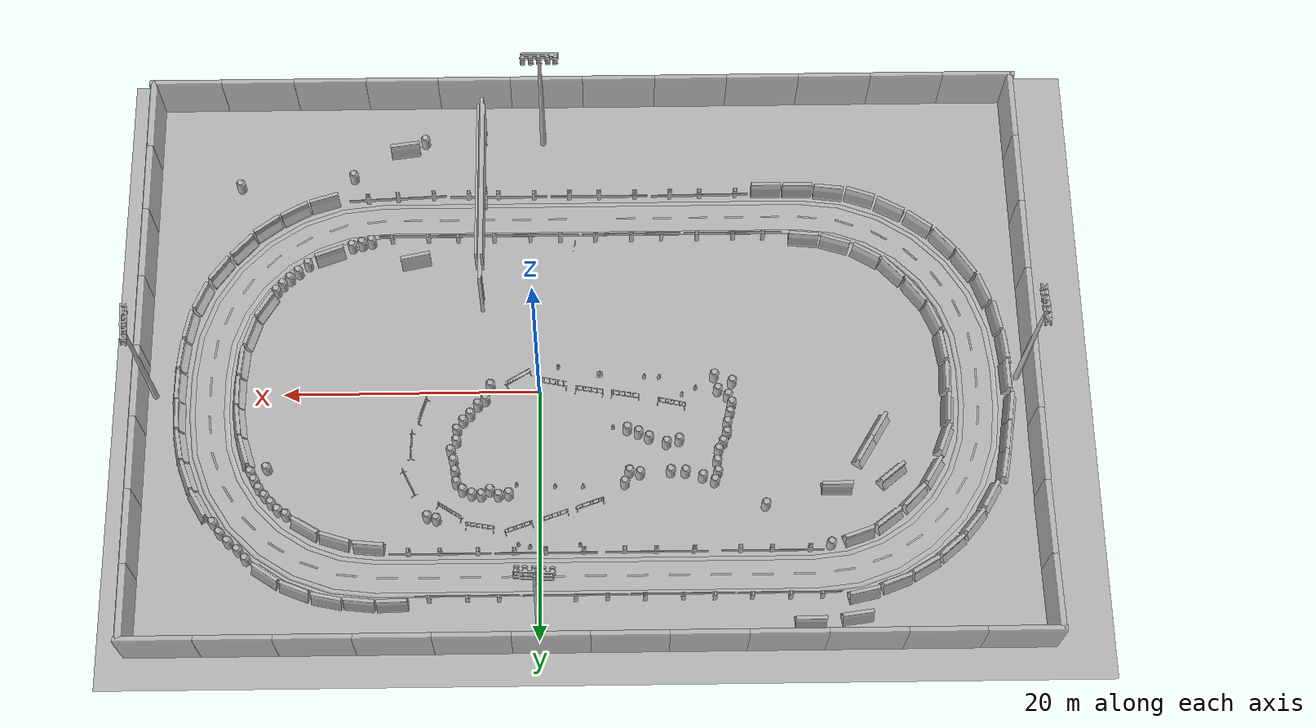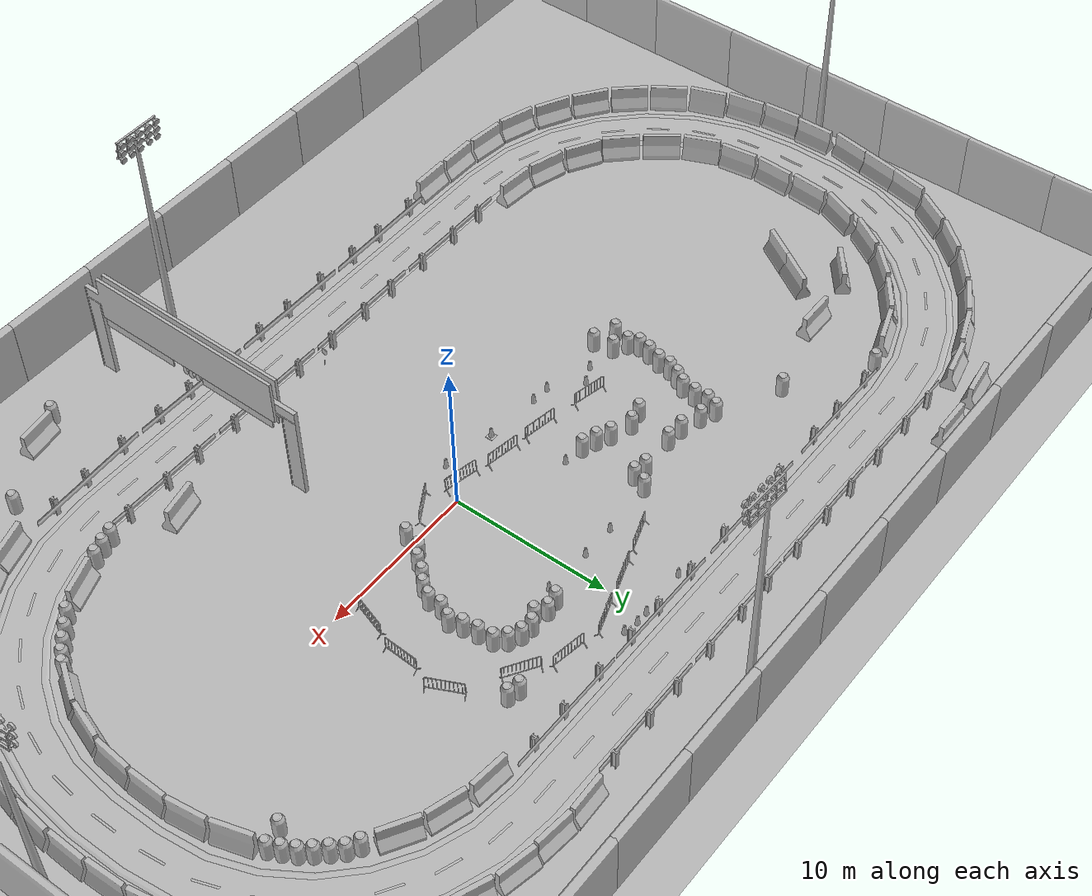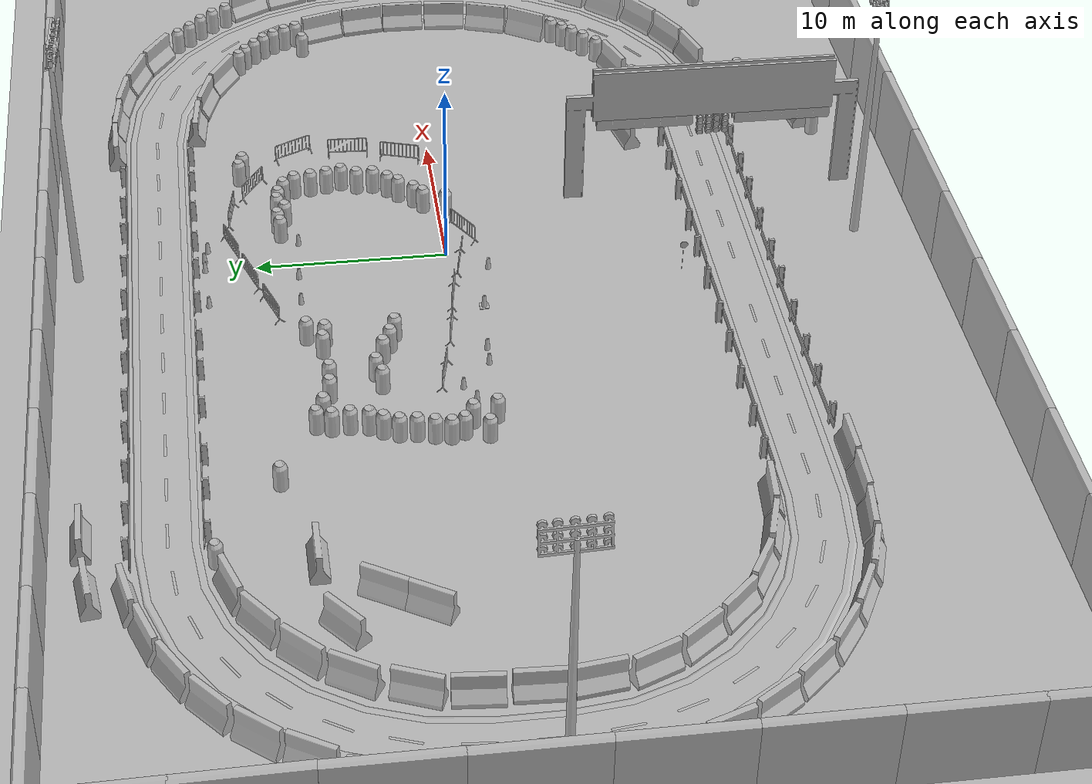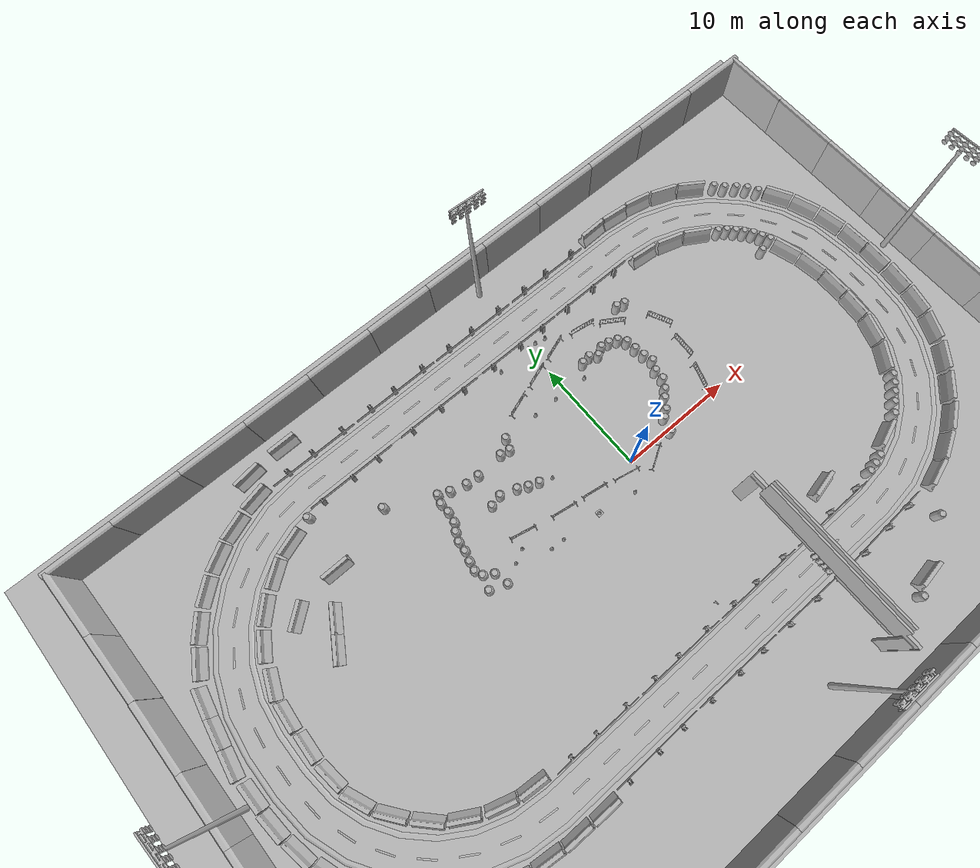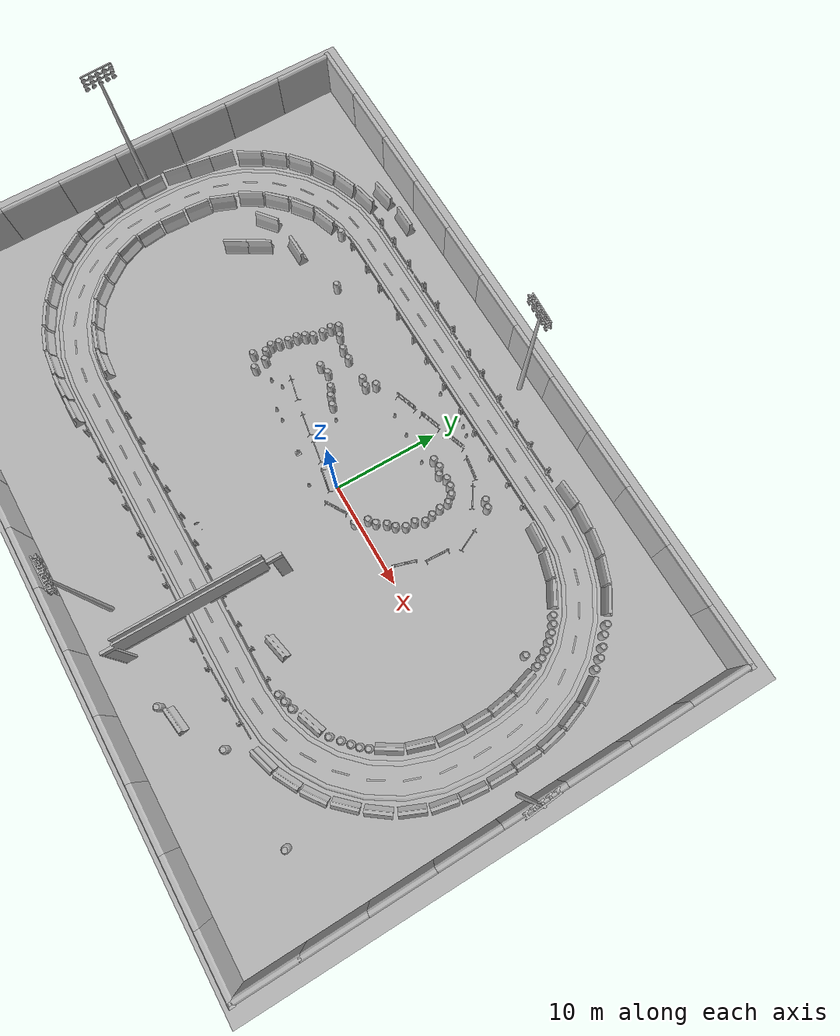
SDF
<sdf version="1.6">
 <world name="default">
  <gravity>0 0 -9.8</gravity>
  <magnetic_field>6e-06 2.3e-05 -4.2e-05</magnetic_field>
  <atmosphere type="adiabatic"/>
  <physics name="default_physics" default="0" type="ode">
   <max_step_size>0.001</max_step_size>
   <real_time_factor>1</real_time_factor>
   <real_time_update_rate>1000</real_time_update_rate>
  </physics>
  <scene><ambient>0.4 0.4 0.4 1</ambient><background>0.7 0.7 0.7 1</background><shadows>1</shadows></scene>
  <spherical_coordinates>
   <surface_model>EARTH_WGS84</surface_model>
   <latitude_deg>0</latitude_deg>
   <longitude_deg>0</longitude_deg>
   <elevation>0</elevation>
   <heading_deg>0</heading_deg>
  </spherical_coordinates>
  <model name="aws_robomaker_racetrack_Billboard_01">
   <include><uri>model://aws_robomaker_racetrack_Billboard_01</uri></include>
   <pose>4.32789 -14.8431 -2e-06 0 1e-06 1.56416</pose>
  </model>
  <model name="aws_robomaker_racetrack_CrashworthBucket_01_00">
   <include><uri>model://aws_robomaker_racetrack_CrashworthBucket_01</uri></include>
   <pose>-8.47522 4.09403 0.054 0 0 0</pose>
  </model>
  <model name="aws_robomaker_racetrack_CrashworthBucket_01_01">
   <include><uri>model://aws_robomaker_racetrack_CrashworthBucket_01</uri></include>
   <pose>-7.67012 3.67698 0.054 0 0 0</pose>
  </model>
  <model name="aws_robomaker_racetrack_CrashworthBucket_01_02">
   <include><uri>model://aws_robomaker_racetrack_CrashworthBucket_01</uri></include>
   <pose>-13.6708 -0.983538 0.054 0 0 0</pose>
  </model>
  <model name="aws_robomaker_racetrack_CrashworthBucket_01_03">
   <include><uri>model://aws_robomaker_racetrack_CrashworthBucket_01</uri></include>
   <pose>-13.6938 6.13266 0.054 0 0 0</pose>
  </model>
  <model name="aws_robomaker_racetrack_CrashworthBucket_01_04">
   <include><uri>model://aws_robomaker_racetrack_CrashworthBucket_01</uri></include>
   <pose>2.35672 8.58743 0.054 0 0 0.094608</pose>
  </model>
  <model name="aws_robomaker_racetrack_CrashworthBucket_01_05">
   <include><uri>model://aws_robomaker_racetrack_CrashworthBucket_01</uri></include>
   <pose>3.14399 8.69292 0 0 -0 0.292667</pose>
  </model>
  <model name="aws_robomaker_racetrack_CrashworthBucket_01_06">
   <include><uri>model://aws_robomaker_racetrack_CrashworthBucket_01</uri></include>
   <pose>5.18867 8.56895 0 0 0 -0.026658</pose>
  </model>
  <model name="aws_robomaker_racetrack_CrashworthBucket_01_07">
   <include><uri>model://aws_robomaker_racetrack_CrashworthBucket_01</uri></include>
   <pose>5.89383 8.24239 0.054 0 0 0</pose>
  </model>
  <model name="aws_robomaker_racetrack_CrashworthBucket_01_08">
   <include><uri>model://aws_robomaker_racetrack_CrashworthBucket_01</uri></include>
   <pose>8.58056 10.3426 0.054 0 0 0</pose>
  </model>
  <model name="aws_robomaker_racetrack_CrashworthBucket_01_09">
   <include><uri>model://aws_robomaker_racetrack_CrashworthBucket_01</uri></include>
   <pose>7.88227 10.5539 0.054 0 0 0</pose>
  </model>
  <model name="aws_robomaker_racetrack_CrashworthBucket_01_10">
   <include><uri>model://aws_robomaker_racetrack_CrashworthBucket_01</uri></include>
   <pose>22.2917 13.5697 0 0 -0 0</pose>
  </model>
  <model name="aws_robomaker_racetrack_CrashworthBucket_01_11">
   <include><uri>model://aws_robomaker_racetrack_CrashworthBucket_01</uri></include>
   <pose>22.9018 12.8693 0.054 0 0 0</pose>
  </model>
  <model name="aws_robomaker_racetrack_CrashworthBucket_01_12">
   <include><uri>model://aws_robomaker_racetrack_CrashworthBucket_01</uri></include>
   <pose>22.2128 6.62693 0.054 0 0 0</pose>
  </model>
  <model name="aws_robomaker_racetrack_CrashworthBucket_01_13">
   <include><uri>model://aws_robomaker_racetrack_CrashworthBucket_01</uri></include>
   <pose>20.9847 6.29253 0 0 -0 0</pose>
  </model>
  <model name="aws_robomaker_racetrack_CrashworthBucket_01_14">
   <include><uri>model://aws_robomaker_racetrack_CrashworthBucket_01</uri></include>
   <pose>24.073 -17.9303 0.054 0 0 0</pose>
  </model>
  <model name="aws_robomaker_racetrack_CrashworthBucket_01_15">
   <include><uri>model://aws_robomaker_racetrack_CrashworthBucket_01</uri></include>
   <pose>20.8422 -8.59507 0.054 0 0 0.012499</pose>
  </model>
  <model name="aws_robomaker_racetrack_CrashworthBucket_01_16">
   <include><uri>model://aws_robomaker_racetrack_CrashworthBucket_01</uri></include>
   <pose>20.3649 -9.17417 0 0 -0 0.004768</pose>
  </model>
  <model name="aws_robomaker_racetrack_CrashworthBucket_01_17">
   <include><uri>model://aws_robomaker_racetrack_CrashworthBucket_01</uri></include>
   <pose>19.7995 -9.67862 0.054 0 0 -0.003254</pose>
  </model>
  <model name="aws_robomaker_racetrack_CrashworthBucket_01_18">
   <include><uri>model://aws_robomaker_racetrack_CrashworthBucket_01</uri></include>
   <pose>19.1471 -10.2467 0.054 0 0 0</pose>
  </model>
  <model name="aws_robomaker_racetrack_CrashworthBucket_01_19">
   <include><uri>model://aws_robomaker_racetrack_CrashworthBucket_01</uri></include>
   <pose>18.3999 -10.9106 0.054 0 0 0</pose>
  </model>
  <model name="aws_robomaker_racetrack_CrashworthBucket_01_20">
   <include><uri>model://aws_robomaker_racetrack_CrashworthBucket_01</uri></include>
   <pose>-22.169 12.8311 0 0 -0 0</pose>
  </model>
  <model name="aws_robomaker_racetrack_CrashworthBucket_01_21">
   <include><uri>model://aws_robomaker_racetrack_CrashworthBucket_01</uri></include>
   <pose>-17.3216 9.66872 0.054 0 0 0</pose>
  </model>
  <model name="aws_robomaker_racetrack_CrashworthBucket_01_22">
   <include><uri>model://aws_robomaker_racetrack_CrashworthBucket_01</uri></include>
   <pose>14.1427 -12.6734 0.054 0 0 0</pose>
  </model>
  <model name="aws_robomaker_racetrack_CrashworthBucket_01_23">
   <include><uri>model://aws_robomaker_racetrack_CrashworthBucket_01</uri></include>
   <pose>14.9254 -12.4456 0.054 0 0 0</pose>
  </model>
  <model name="aws_robomaker_racetrack_CrashworthBucket_01_24">
   <include><uri>model://aws_robomaker_racetrack_CrashworthBucket_01</uri></include>
   <pose>-15.0558 -0.45872 0 0 -0 0</pose>
  </model>
  <model name="aws_robomaker_racetrack_CrashworthBucket_01_25">
   <include><uri>model://aws_robomaker_racetrack_CrashworthBucket_01</uri></include>
   <pose>13.3868 -12.8508 0.054 0 0 0</pose>
  </model>
  <model name="aws_robomaker_racetrack_CrashworthBucket_01_26">
   <include><uri>model://aws_robomaker_racetrack_CrashworthBucket_01</uri></include>
   <pose>9.22311 -21.8198 0.054 0 0 0</pose>
  </model>
  <model name="aws_robomaker_racetrack_CrashworthBucket_01_27">
   <include><uri>model://aws_robomaker_racetrack_CrashworthBucket_01</uri></include>
   <pose>3.82438 -0.358379 0 0 -0 0</pose>
  </model>
  <model name="aws_robomaker_racetrack_CrashworthBucket_01_28">
   <include><uri>model://aws_robomaker_racetrack_CrashworthBucket_01</uri></include>
   <pose>14.9648 -18.6736 0.054 0 0 0</pose>
  </model>
  <model name="aws_robomaker_racetrack_CrashworthBucket_01_29">
   <include><uri>model://aws_robomaker_racetrack_CrashworthBucket_01</uri></include>
   <pose>23.6827 12.1956 0.054 0 0 0</pose>
  </model>
  <model name="aws_robomaker_racetrack_CrashworthBucket_01_30">
   <include><uri>model://aws_robomaker_racetrack_CrashworthBucket_01</uri></include>
   <pose>24.3346 11.4874 0.054 0 0 0</pose>
  </model>
  <model name="aws_robomaker_racetrack_CrashworthBucket_01_31">
   <include><uri>model://aws_robomaker_racetrack_CrashworthBucket_01</uri></include>
   <pose>24.8882 10.6788 0.054 0 0 0</pose>
  </model>
  <model name="aws_robomaker_racetrack_CrashworthBucket_01_32">
   <include><uri>model://aws_robomaker_racetrack_CrashworthBucket_01</uri></include>
   <pose>20.5304 9.13561 0.054 0 0 -0.001449</pose>
  </model>
  <model name="aws_robomaker_racetrack_CrashworthBucket_01_33">
   <include><uri>model://aws_robomaker_racetrack_CrashworthBucket_01</uri></include>
   <pose>19.3714 10.0864 0.054 0 0 0</pose>
  </model>
  <model name="aws_robomaker_racetrack_CrashworthBucket_01_34">
   <include><uri>model://aws_robomaker_racetrack_CrashworthBucket_01</uri></include>
   <pose>20.0016 9.69426 0 0 0 -0.00182</pose>
  </model>
  <model name="aws_robomaker_racetrack_CrashworthBucket_01_35">
   <include><uri>model://aws_robomaker_racetrack_CrashworthBucket_01</uri></include>
   <pose>21.0478 8.57525 0.054 0 0 -0.000349</pose>
  </model>
  <model name="aws_robomaker_racetrack_CrashworthBucket_01_36">
   <include><uri>model://aws_robomaker_racetrack_CrashworthBucket_01</uri></include>
   <pose>21.5218 7.97169 0.054 0 0 0</pose>
  </model>
  <model name="aws_robomaker_racetrack_CrashworthBucket_01_37">
   <include><uri>model://aws_robomaker_racetrack_CrashworthBucket_01</uri></include>
   <pose>21.8874 7.29413 0.054 0 0 0</pose>
  </model>
  <model name="aws_robomaker_racetrack_CrashworthBucket_01_38">
   <include><uri>model://aws_robomaker_racetrack_CrashworthBucket_01</uri></include>
   <pose>6.38383 7.63289 0.054 0 0 0</pose>
  </model>
  <model name="aws_robomaker_racetrack_CrashworthBucket_01_39">
   <include><uri>model://aws_robomaker_racetrack_CrashworthBucket_01</uri></include>
   <pose>6.48514 6.73841 0.054 0 0 0</pose>
  </model>
  <model name="aws_robomaker_racetrack_CrashworthBucket_01_40">
   <include><uri>model://aws_robomaker_racetrack_CrashworthBucket_01</uri></include>
   <pose>6.63137 5.86016 0.054 0 0 0</pose>
  </model>
  <model name="aws_robomaker_racetrack_CrashworthBucket_01_41">
   <include><uri>model://aws_robomaker_racetrack_CrashworthBucket_01</uri></include>
   <pose>6.84089 5.04433 0.054 0 0 0</pose>
  </model>
  <model name="aws_robomaker_racetrack_CrashworthBucket_01_42">
   <include><uri>model://aws_robomaker_racetrack_CrashworthBucket_01</uri></include>
   <pose>6.41586 4.22597 0.054 0 0 0</pose>
  </model>
  <model name="aws_robomaker_racetrack_CrashworthBucket_01_43">
   <include><uri>model://aws_robomaker_racetrack_CrashworthBucket_01</uri></include>
   <pose>4.45229 8.66174 0.054 0 0 0.095583</pose>
  </model>
  <model name="aws_robomaker_racetrack_CrashworthBucket_01_44">
   <include><uri>model://aws_robomaker_racetrack_CrashworthBucket_01</uri></include>
   <pose>-13.8311 5.21601 0.054 0 0 0</pose>
  </model>
  <model name="aws_robomaker_racetrack_CrashworthBucket_01_45">
   <include><uri>model://aws_robomaker_racetrack_CrashworthBucket_01</uri></include>
   <pose>5.3642 2.03973 0.054 0 0 -0.008872</pose>
  </model>
  <model name="aws_robomaker_racetrack_CrashworthBucket_01_46">
   <include><uri>model://aws_robomaker_racetrack_CrashworthBucket_01</uri></include>
   <pose>5.91311 2.58362 0 0 0 -0.010849</pose>
  </model>
  <model name="aws_robomaker_racetrack_CrashworthBucket_01_47">
   <include><uri>model://aws_robomaker_racetrack_CrashworthBucket_01</uri></include>
   <pose>6.38729 3.3437 0.054 0 0 0</pose>
  </model>
  <model name="aws_robomaker_racetrack_CrashworthBucket_01_48">
   <include><uri>model://aws_robomaker_racetrack_CrashworthBucket_01</uri></include>
   <pose>4.78436 1.25544 0 0 0 -0.004687</pose>
  </model>
  <model name="aws_robomaker_racetrack_CrashworthBucket_01_49">
   <include><uri>model://aws_robomaker_racetrack_CrashworthBucket_01</uri></include>
   <pose>4.1948 0.806848 0.054 0 0 -0.002707</pose>
  </model>
  <model name="aws_robomaker_racetrack_CrashworthBucket_01_50">
   <include><uri>model://aws_robomaker_racetrack_CrashworthBucket_01</uri></include>
   <pose>-6.80733 3.36416 0.054 0 0 0</pose>
  </model>
  <model name="aws_robomaker_racetrack_CrashworthBucket_01_51">
   <include><uri>model://aws_robomaker_racetrack_CrashworthBucket_01</uri></include>
   <pose>-9.83411 4.55632 0.054 0 0 0</pose>
  </model>
  <model name="aws_robomaker_racetrack_CrashworthBucket_01_52">
   <include><uri>model://aws_robomaker_racetrack_CrashworthBucket_01</uri></include>
   <pose>-10.8194 4.31922 0.054 0 0 0</pose>
  </model>
  <model name="aws_robomaker_racetrack_CrashworthBucket_01_53">
   <include><uri>model://aws_robomaker_racetrack_CrashworthBucket_01</uri></include>
   <pose>3.7947 8.27498 0 0 0 -0.244875</pose>
  </model>
  <model name="aws_robomaker_racetrack_CrashworthBucket_01_54">
   <include><uri>model://aws_robomaker_racetrack_CrashworthBucket_01</uri></include>
   <pose>-10.1026 6.87186 0.054 0 0 0</pose>
  </model>
  <model name="aws_robomaker_racetrack_CrashworthBucket_01_55">
   <include><uri>model://aws_robomaker_racetrack_CrashworthBucket_01</uri></include>
   <pose>-11.2375 6.93335 0.054 0 0 0</pose>
  </model>
  <model name="aws_robomaker_racetrack_CrashworthBucket_01_56">
   <include><uri>model://aws_robomaker_racetrack_CrashworthBucket_01</uri></include>
   <pose>-13.9209 0.216601 0.054 0 0 0</pose>
  </model>
  <model name="aws_robomaker_racetrack_CrashworthBucket_01_57">
   <include><uri>model://aws_robomaker_racetrack_CrashworthBucket_01</uri></include>
   <pose>-7.72969 7.02543 0.054 0 0 0</pose>
  </model>
  <model name="aws_robomaker_racetrack_CrashworthBucket_01_58">
   <include><uri>model://aws_robomaker_racetrack_CrashworthBucket_01</uri></include>
   <pose>-6.91293 6.87432 0.054 0 0 0</pose>
  </model>
  <model name="aws_robomaker_racetrack_CrashworthBucket_01_59">
   <include><uri>model://aws_robomaker_racetrack_CrashworthBucket_01</uri></include>
   <pose>-6.56208 7.77782 0.054 0 0 0</pose>
  </model>
  <model name="aws_robomaker_racetrack_CrashworthBucket_01_60">
   <include><uri>model://aws_robomaker_racetrack_CrashworthBucket_01</uri></include>
   <pose>-14.6963 0.705029 0 0 -0 0.00632</pose>
  </model>
  <model name="aws_robomaker_racetrack_CrashworthBucket_01_61">
   <include><uri>model://aws_robomaker_racetrack_CrashworthBucket_01</uri></include>
   <pose>-14.205 4.57376 0.054 0 0 0</pose>
  </model>
  <model name="aws_robomaker_racetrack_CrashworthBucket_01_62">
   <include><uri>model://aws_robomaker_racetrack_CrashworthBucket_01</uri></include>
   <pose>-14.8093 2.14739 0.054 0 0 0</pose>
  </model>
  <model name="aws_robomaker_racetrack_CrashworthBucket_01_63">
   <include><uri>model://aws_robomaker_racetrack_CrashworthBucket_01</uri></include>
   <pose>-14.964 1.3691 0.054 0 0 0.003001</pose>
  </model>
  <model name="aws_robomaker_racetrack_CrashworthBucket_01_64">
   <include><uri>model://aws_robomaker_racetrack_CrashworthBucket_01</uri></include>
   <pose>-14.5066 3.82709 0.054 0 0 -0.127634</pose>
  </model>
  <model name="aws_robomaker_racetrack_CrashworthBucket_01_65">
   <include><uri>model://aws_robomaker_racetrack_CrashworthBucket_01</uri></include>
   <pose>-14.5756 2.99063 0.054 0 0 0</pose>
  </model>
  <model name="aws_robomaker_racetrack_CrashworthBucket_01_66">
   <include><uri>model://aws_robomaker_racetrack_CrashworthBucket_01</uri></include>
   <pose>-13.7254 7.00826 0.054 0 0 0</pose>
  </model>
  <model name="aws_robomaker_racetrack_CrashworthBucket_01_67">
   <include><uri>model://aws_robomaker_racetrack_CrashworthBucket_01</uri></include>
   <pose>-13.4797 7.73167 0.054 0 0 0</pose>
  </model>
  <model name="aws_robomaker_racetrack_CrashworthBucket_01_68">
   <include><uri>model://aws_robomaker_racetrack_CrashworthBucket_01</uri></include>
   <pose>-12.5612 7.3288 0.054 0 0 0</pose>
  </model>
  <model name="aws_robomaker_racetrack_FenceMesh_01_00">
   <include><uri>model://aws_robomaker_racetrack_FenceMesh_01</uri></include>
   <pose>4.2331 -11.1761 5.05223 0 0 -0.006038</pose>
  </model>
  <model name="aws_robomaker_racetrack_FenceMesh_01_01">
   <include><uri>model://aws_robomaker_racetrack_FenceMesh_01</uri></include>
   <pose>4.16406 -18.6269 5.05223 0 0 -0.006038</pose>
  </model>
  <model name="aws_robomaker_racetrack_FenceMesh_01_02">
   <include><uri>model://aws_robomaker_racetrack_FenceMesh_01</uri></include>
   <pose>4.63223 -18.6067 5.05223 0 0 -0.006038</pose>
  </model>
  <model name="aws_robomaker_racetrack_FenceMesh_01_03">
   <include><uri>model://aws_robomaker_racetrack_FenceMesh_01</uri></include>
   <pose>4.67467 -11.1966 5.05223 0 0 -0.006038</pose>
  </model>
  <model name="aws_robomaker_racetrack_Fence_01_00">
   <include><uri>model://aws_robomaker_racetrack_Fence_01</uri></include>
   <pose>7.552996 13.158695 0 0 0 -1.57272</pose>
  </model>
  <model name="aws_robomaker_racetrack_Fence_01_01">
   <include><uri>model://aws_robomaker_racetrack_Fence_01</uri></include>
   <pose>-0.500271 13.158695 0 0 0 -1.57272</pose>
  </model>
  <model name="aws_robomaker_racetrack_Fence_01_02">
   <include><uri>model://aws_robomaker_racetrack_Fence_01</uri></include>
   <pose>-8.897229 13.158695 0 0 0 -1.57272</pose>
  </model>
  <model name="aws_robomaker_racetrack_Fence_01_03">
   <include><uri>model://aws_robomaker_racetrack_Fence_01</uri></include>
   <pose>-17.681196 13.158695 0 0 0 -1.57272</pose>
  </model>
  <model name="aws_robomaker_racetrack_Fence_01_04">
   <include><uri>model://aws_robomaker_racetrack_Fence_01</uri></include>
   <pose>-12.990376 -16.857170 0.054 -0.0 0.0 -1.558614</pose>
  </model>
  <model name="aws_robomaker_racetrack_Fence_01_05">
   <include><uri>model://aws_robomaker_racetrack_Fence_01</uri></include>
   <pose>-4.880881 -16.849474 0.054  0 0 -1.572721</pose>
  </model>
  <model name="aws_robomaker_racetrack_Fence_01_06">
   <include><uri>model://aws_robomaker_racetrack_Fence_01</uri></include>
   <pose>3.247635 -16.899557 0.054  0 0 -1.581650</pose>
  </model>
  <model name="aws_robomaker_racetrack_Fence_01_07">
   <include><uri>model://aws_robomaker_racetrack_Fence_01</uri></include>
   <pose>11.364270 -16.813890 0.054  0.0 0.0 -1.525504</pose>
  </model>
  <model name="aws_robomaker_racetrack_Fence_01_08">
   <include><uri>model://aws_robomaker_racetrack_Fence_01</uri></include>
   <pose>-15.529042 -13.134610 0.054 0 -0 1.57158</pose>
  </model>
  <model name="aws_robomaker_racetrack_Fence_01_09">
   <include><uri>model://aws_robomaker_racetrack_Fence_01</uri></include>
   <pose>-7.391050 -13.134610 0.054651 0 0.0 1.580400</pose>
  </model>
  <model name="aws_robomaker_racetrack_Fence_01_10">
   <include><uri>model://aws_robomaker_racetrack_Fence_01</uri></include>
   <pose>0.720398 -13.134610 0.054671 0 -0 1.57158</pose>
  </model>
  <model name="aws_robomaker_racetrack_Fence_01_11">
   <include><uri>model://aws_robomaker_racetrack_Fence_01</uri></include>
   <pose>8.89898 -13.134610 0.054638 0.0 0.0 1.572679</pose>
  </model>
  <model name="aws_robomaker_racetrack_Fence_01_12">
   <include><uri>model://aws_robomaker_racetrack_Fence_01</uri></include>
   <pose>-18.882746 16.818918 0.054  0 -0 1.57158</pose>
  </model>
  <model name="aws_robomaker_racetrack_Fence_01_13">
   <include><uri>model://aws_robomaker_racetrack_Fence_01</uri></include>
   <pose>-10.776134 16.818918 0.054  0 -0 1.57158</pose>
  </model>
  <model name="aws_robomaker_racetrack_Fence_01_14">
   <include><uri>model://aws_robomaker_racetrack_Fence_01</uri></include>
   <pose>-2.679413 16.818918 0 0 -0 1.57158</pose>
  </model>
  <model name="aws_robomaker_racetrack_Fence_01_15">
   <include><uri>model://aws_robomaker_racetrack_Fence_01</uri></include>
   <pose>5.475008 16.818918 0.054  0 -0 1.57158</pose>
  </model>
  <model name="aws_robomaker_racetrack_Fence_02_00">
   <include><uri>model://aws_robomaker_racetrack_Fence_02</uri></include>
   <pose>-1.05264 -0.5238 0.040535 -0.008781 0.086261 -1.77545</pose>
  </model>
  <model name="aws_robomaker_racetrack_Fence_02_01">
   <include><uri>model://aws_robomaker_racetrack_Fence_02</uri></include>
   <pose>9.06357 1.626 0 0 0 -0.300407</pose>
  </model>
  <model name="aws_robomaker_racetrack_Fence_02_02">
   <include><uri>model://aws_robomaker_racetrack_Fence_02</uri></include>
   <pose>-3.88076 0.08215 0 0 0 -1.73608</pose>
  </model>
  <model name="aws_robomaker_racetrack_Fence_02_03">
   <include><uri>model://aws_robomaker_racetrack_Fence_02</uri></include>
   <pose>-6.69129 0.495608 0 0 0 -1.73608</pose>
  </model>
  <model name="aws_robomaker_racetrack_Fence_02_04">
   <include><uri>model://aws_robomaker_racetrack_Fence_02</uri></include>
   <pose>-10.283561 1.223148 0.054 0 0 -1.789875</pose>
  </model>
  <model name="aws_robomaker_racetrack_Fence_02_05">
   <include><uri>model://aws_robomaker_racetrack_Fence_02</uri></include>
   <pose>4.57205 11.1353 0 0 0 -1.73608</pose>
  </model>
  <model name="aws_robomaker_racetrack_Fence_02_06">
   <include><uri>model://aws_robomaker_racetrack_Fence_02</uri></include>
   <pose>6.8958583 9.887979 0 0 0 -2.140475</pose>
  </model>
  <model name="aws_robomaker_racetrack_Fence_02_07">
   <include><uri>model://aws_robomaker_racetrack_Fence_02</uri></include>
   <pose>1.60246 11.2143 0 0 -0 1.90339</pose>
  </model>
  <model name="aws_robomaker_racetrack_Fence_02_08">
   <include><uri>model://aws_robomaker_racetrack_Fence_02</uri></include>
   <pose>-1.13 10.3272 0 0 -0 1.90339</pose>
  </model>
  <model name="aws_robomaker_racetrack_Fence_02_09">
   <include><uri>model://aws_robomaker_racetrack_Fence_02</uri></include>
   <pose>-3.85384 9.39461 0 0 -0 1.90339</pose>
  </model>
  <model name="aws_robomaker_racetrack_Fence_02_10">
   <include><uri>model://aws_robomaker_racetrack_Fence_02</uri></include>
   <pose>9.89165 4.45225 0 0 0 -0.045392</pose>
  </model>
  <model name="aws_robomaker_racetrack_Fence_02_11">
   <include><uri>model://aws_robomaker_racetrack_Fence_02</uri></include>
   <pose>10.0686 7.48939 0 0 -0 0.450699</pose>
  </model>
  <model name="aws_robomaker_racetrack_Fence_02_12">
   <include><uri>model://aws_robomaker_racetrack_Fence_02</uri></include>
   <pose>1.65856 -1.03383 0 0 0 -1.02955</pose>
  </model>
  <model name="aws_robomaker_racetrack_RaceStartLight_01_00">
   <include><uri>model://aws_robomaker_racetrack_RaceStartLight_01</uri></include>
   <pose>4.13359 -14.1692 5.08709 0 -0 0</pose>
  </model>
  <model name="aws_robomaker_racetrack_RaceStartLight_01_01">
   <include><uri>model://aws_robomaker_racetrack_RaceStartLight_01</uri></include>
   <pose>4.14665 -14.6522 5.08709 0 -0 0</pose>
  </model>
  <model name="aws_robomaker_racetrack_RaceStartLight_01_02">
   <include><uri>model://aws_robomaker_racetrack_RaceStartLight_01</uri></include>
   <pose>4.21676 -15.0918 5.08709 0 -0 0</pose>
  </model>
  <model name="aws_robomaker_racetrack_RaceStartLight_01_03">
   <include><uri>model://aws_robomaker_racetrack_RaceStartLight_01</uri></include>
   <pose>4.17594 -15.5526 5.08709 0 -0 0</pose>
  </model>
  <model name="aws_robomaker_racetrack_StonePier_01_00">
   <include><uri>model://aws_robomaker_racetrack_StonePier_01</uri></include>
   <pose>-21.1732 -12.7799 0.054 0 -0 -0.086667</pose>
  </model>
  <model name="aws_robomaker_racetrack_StonePier_01_01">
   <include><uri>model://aws_robomaker_racetrack_StonePier_01</uri></include>
   <pose>-23.6727 -12.2854 0.054 0 -0.0 -0.301631</pose>
  </model>
  <model name="aws_robomaker_racetrack_StonePier_01_02">
   <include><uri>model://aws_robomaker_racetrack_StonePier_01</uri></include>
   <pose>-22.8128 8.293 0.054 0 -0 0.009742</pose>
  </model>
  <model name="aws_robomaker_racetrack_StonePier_01_03">
   <include><uri>model://aws_robomaker_racetrack_StonePier_01</uri></include>
   <pose>-24.2891 12.2118 0.054 0 -0 0.334226</pose>
  </model>
  <model name="aws_robomaker_racetrack_StonePier_01_04">
   <include><uri>model://aws_robomaker_racetrack_StonePier_01</uri></include>
   <pose>-20.3219 18.8912 0.054 0 -0.0 0.009742</pose>
  </model>
  <model name="aws_robomaker_racetrack_StonePier_01_05">
   <include><uri>model://aws_robomaker_racetrack_StonePier_01</uri></include>
   <pose>11.0892 17.2043 0.054 0 -0.0 0.029389</pose>
  </model>
  <model name="aws_robomaker_racetrack_StonePier_01_06">
   <include><uri>model://aws_robomaker_racetrack_StonePier_01</uri></include>
   <pose>13.5633 17.1121 0.054 0 -0.0 -0.108086</pose>
  </model>
  <model name="aws_robomaker_racetrack_StonePier_01_07">
   <include><uri>model://aws_robomaker_racetrack_StonePier_01</uri></include>
   <pose>16.0013 16.8104 0.054 0 -0.0 -0.206147</pose>
  </model>
  <model name="aws_robomaker_racetrack_StonePier_01_08">
   <include><uri>model://aws_robomaker_racetrack_StonePier_01</uri></include>
   <pose>18.4263 16.0384 0.054 0 -0.0 -0.379591</pose>
  </model>
  <model name="aws_robomaker_racetrack_StonePier_01_09">
   <include><uri>model://aws_robomaker_racetrack_StonePier_01</uri></include>
   <pose>17.8323 11.1467 0.054 0 -0.0 -0.536699</pose>
  </model>
  <model name="aws_robomaker_racetrack_StonePier_01_10">
   <include><uri>model://aws_robomaker_racetrack_StonePier_01</uri></include>
   <pose>22.7563 5.03589 0.054 0 -0.0 -1.28348</pose>
  </model>
  <model name="aws_robomaker_racetrack_StonePier_01_11">
   <include><uri>model://aws_robomaker_racetrack_StonePier_01</uri></include>
   <pose>23.2964 2.57509 0.054 -0 -0.0 -1.43498</pose>
  </model>
  <model name="aws_robomaker_racetrack_StonePier_01_12">
   <include><uri>model://aws_robomaker_racetrack_StonePier_01</uri></include>
   <pose>23.4326 0.10745 0.054 -0 -0.0 -1.58404</pose>
  </model>
  <model name="aws_robomaker_racetrack_StonePier_01_13">
   <include><uri>model://aws_robomaker_racetrack_StonePier_01</uri></include>
   <pose>23.2774 -2.40527 0.054 0 -0.0 -1.65922</pose>
  </model>
  <model name="aws_robomaker_racetrack_StonePier_01_14">
   <include><uri>model://aws_robomaker_racetrack_StonePier_01</uri></include>
   <pose>22.705 -4.89186 0.054 -0 -0.0 -1.88566</pose>
  </model>
  <model name="aws_robomaker_racetrack_StonePier_01_15">
   <include><uri>model://aws_robomaker_racetrack_StonePier_01</uri></include>
   <pose>21.6688 -7.19526 0.054 0 -0.0 -2.13625</pose>
  </model>
  <model name="aws_robomaker_racetrack_StonePier_01_16">
   <include><uri>model://aws_robomaker_racetrack_StonePier_01</uri></include>
   <pose>28.1211 -0.475719 0.054 0 -0.0 -1.59506</pose>
  </model>
  <model name="aws_robomaker_racetrack_StonePier_01_17">
   <include><uri>model://aws_robomaker_racetrack_StonePier_01</uri></include>
   <pose>16.7061 -11.7058 0.054 -0 -0.0 -2.7953</pose>
  </model>
  <model name="aws_robomaker_racetrack_StonePier_01_18">
   <include><uri>model://aws_robomaker_racetrack_StonePier_01</uri></include>
   <pose>28.0027 -3.03906 0.054 0 -0.0 -1.68291</pose>
  </model>
  <model name="aws_robomaker_racetrack_StonePier_01_19">
   <include><uri>model://aws_robomaker_racetrack_StonePier_01</uri></include>
   <pose>9.84486 -11.2119 0.054 0 -0.0 -2.93657</pose>
  </model>
  <model name="aws_robomaker_racetrack_StonePier_01_20">
   <include><uri>model://aws_robomaker_racetrack_StonePier_01</uri></include>
   <pose>10.8625 -21.1556 0.054 -0 -0.0 0.135159</pose>
  </model>
  <model name="aws_robomaker_racetrack_StonePier_01_21">
   <include><uri>model://aws_robomaker_racetrack_StonePier_01</uri></include>
   <pose>17.2914 -16.4156 0.054 0 -0.0 0.298911</pose>
  </model>
  <model name="aws_robomaker_racetrack_StonePier_01_22">
   <include><uri>model://aws_robomaker_racetrack_StonePier_01</uri></include>
   <pose>19.6208 -15.4615 0.054 0 -0.0 0.489077</pose>
  </model>
  <model name="aws_robomaker_racetrack_StonePier_01_23">
   <include><uri>model://aws_robomaker_racetrack_StonePier_01</uri></include>
   <pose>21.7939 -14.1476 0.054 0 -0.0 0.61668</pose>
  </model>
  <model name="aws_robomaker_racetrack_StonePier_01_24">
   <include><uri>model://aws_robomaker_racetrack_StonePier_01</uri></include>
   <pose>23.6698 -12.3608 0.054 0 -0.0 0.810318</pose>
  </model>
  <model name="aws_robomaker_racetrack_StonePier_01_25">
   <include><uri>model://aws_robomaker_racetrack_StonePier_01</uri></include>
   <pose>25.3929 -10.3347 0.054 -0 -0.0 0.931507</pose>
  </model>
  <model name="aws_robomaker_racetrack_StonePier_01_26">
   <include><uri>model://aws_robomaker_racetrack_StonePier_01</uri></include>
   <pose>27.7466 4.53211 0.054 0 -0.0 1.75246</pose>
  </model>
  <model name="aws_robomaker_racetrack_StonePier_01_27">
   <include><uri>model://aws_robomaker_racetrack_StonePier_01</uri></include>
   <pose>27.0691 6.99271 0.054 0 -0.0 1.91654</pose>
  </model>
  <model name="aws_robomaker_racetrack_StonePier_01_28">
   <include><uri>model://aws_robomaker_racetrack_StonePier_01</uri></include>
   <pose>26.0366 9.29805 0.054 0 -0.0 2.08782</pose>
  </model>
  <model name="aws_robomaker_racetrack_StonePier_01_29">
   <include><uri>model://aws_robomaker_racetrack_StonePier_01</uri></include>
   <pose>26.7385 -7.99231 0.054 -0 -0.0 1.16098</pose>
  </model>
  <model name="aws_robomaker_racetrack_StonePier_01_30">
   <include><uri>model://aws_robomaker_racetrack_StonePier_01</uri></include>
   <pose>27.5962 -5.54706 0.054 0 -0.0 1.36231</pose>
  </model>
  <model name="aws_robomaker_racetrack_StonePier_01_31">
   <include><uri>model://aws_robomaker_racetrack_StonePier_01</uri></include>
   <pose>28.0314 1.9989 0.054 0 -0.0 -1.53351</pose>
  </model>
  <model name="aws_robomaker_racetrack_StonePier_01_32">
   <include><uri>model://aws_robomaker_racetrack_StonePier_01</uri></include>
   <pose>20.6714 14.8473 0.054 0 -0.0 -0.587598</pose>
  </model>
  <model name="aws_robomaker_racetrack_StonePier_01_33">
   <include><uri>model://aws_robomaker_racetrack_StonePier_01</uri></include>
   <pose>12.9654 12.6879 0.054 0 -0.0 -0.096781</pose>
  </model>
  <model name="aws_robomaker_racetrack_StonePier_01_34">
   <include><uri>model://aws_robomaker_racetrack_StonePier_01</uri></include>
   <pose>15.5357 12.1477 0.054 -0 0.00036 -0.29956</pose>
  </model>
  <model name="aws_robomaker_racetrack_StonePier_01_35">
   <include><uri>model://aws_robomaker_racetrack_StonePier_01</uri></include>
   <pose>-23.832 18.561 0.054 -0 -0.0 0.133251</pose>
  </model>
  <model name="aws_robomaker_racetrack_StonePier_01_36">
   <include><uri>model://aws_robomaker_racetrack_StonePier_01</uri></include>
   <pose>-26.5946 11.0295 0.054 0 0.00036 0.646791</pose>
  </model>
  <model name="aws_robomaker_racetrack_StonePier_01_37">
   <include><uri>model://aws_robomaker_racetrack_StonePier_01</uri></include>
   <pose>-24.4271 16.8105 0.054 -0 -0.0 0.217772</pose>
  </model>
  <model name="aws_robomaker_racetrack_StonePier_01_38">
   <include><uri>model://aws_robomaker_racetrack_StonePier_01</uri></include>
   <pose>-28.6752 9.30494 0.054 0 -0.0 0.789682</pose>
  </model>
  <model name="aws_robomaker_racetrack_StonePier_01_39">
   <include><uri>model://aws_robomaker_racetrack_StonePier_01</uri></include>
   <pose>-30.2584 7.24451 0.054 -0 -0.0 1.02306</pose>
  </model>
  <model name="aws_robomaker_racetrack_StonePier_01_40">
   <include><uri>model://aws_robomaker_racetrack_StonePier_01</uri></include>
   <pose>-18.3212 -17.1986 0.054 0 -0.0 -0.000165</pose>
  </model>
  <model name="aws_robomaker_racetrack_StonePier_01_41">
   <include><uri>model://aws_robomaker_racetrack_StonePier_01</uri></include>
   <pose>-26.1157 -11.2238 0.054 0 -0.0 -0.528829</pose>
  </model>
  <model name="aws_robomaker_racetrack_StonePier_01_42">
   <include><uri>model://aws_robomaker_racetrack_StonePier_01</uri></include>
   <pose>-28.1466 -9.75745 0.054 0 -0.0 -0.811127</pose>
  </model>
  <model name="aws_robomaker_racetrack_StonePier_01_43">
   <include><uri>model://aws_robomaker_racetrack_StonePier_01</uri></include>
   <pose>-29.8572 -7.79098 0.054 0 -0.0 -0.924577</pose>
  </model>
  <model name="aws_robomaker_racetrack_StonePier_01_44">
   <include><uri>model://aws_robomaker_racetrack_StonePier_01</uri></include>
   <pose>-31.1336 -5.56451 0.054 0 -0.0 -1.16956</pose>
  </model>
  <model name="aws_robomaker_racetrack_StonePier_01_45">
   <include><uri>model://aws_robomaker_racetrack_StonePier_01</uri></include>
   <pose>-31.6395 -3.07904 0.054 -0 -0.0 -1.43795</pose>
  </model>
  <model name="aws_robomaker_racetrack_StonePier_01_46">
   <include><uri>model://aws_robomaker_racetrack_StonePier_01</uri></include>
   <pose>-31.7709 -0.48849 0.054 0 -0.0 -1.61074</pose>
  </model>
  <model name="aws_robomaker_racetrack_StonePier_01_47">
   <include><uri>model://aws_robomaker_racetrack_StonePier_01</uri></include>
   <pose>-31.7363 2.12666 0.054 0 -0.0 -1.64853</pose>
  </model>
  <model name="aws_robomaker_racetrack_StonePier_01_48">
   <include><uri>model://aws_robomaker_racetrack_StonePier_01</uri></include>
   <pose>-31.2901 4.63965 0.054 -0 -0.0 -1.9545</pose>
  </model>
  <model name="aws_robomaker_racetrack_StonePier_01_49">
   <include><uri>model://aws_robomaker_racetrack_StonePier_01</uri></include>
   <pose>-25.0833 5.46077 -2.5e-05 2e-06 -2e-05 -2.1191</pose>
  </model>
  <model name="aws_robomaker_racetrack_StonePier_01_50">
   <include><uri>model://aws_robomaker_racetrack_StonePier_01</uri></include>
   <pose>-26.2415 3.56444 -3.6e-05 1e-06 -2.8e-05 -2.1191</pose>
  </model>
  <model name="aws_robomaker_racetrack_StonePier_01_51">
   <include><uri>model://aws_robomaker_racetrack_StonePier_01</uri></include>
   <pose>-27.0954 7.40849 0.054 -0 0.00036 -2.46174</pose>
  </model>
  <model name="aws_robomaker_racetrack_StonePier_01_52">
   <include><uri>model://aws_robomaker_racetrack_StonePier_01</uri></include>
   <pose>-28.2666 -15.3279 0.054 0 0.00036 -0.483595</pose>
  </model>
  <model name="aws_robomaker_racetrack_StonePier_01_53">
   <include><uri>model://aws_robomaker_racetrack_StonePier_01</uri></include>
   <pose>-30.4813 -13.931 0.054 0 -0.0 2.50624</pose>
  </model>
  <model name="aws_robomaker_racetrack_StonePier_01_54">
   <include><uri>model://aws_robomaker_racetrack_StonePier_01</uri></include>
   <pose>-32.3931 -12.181 0.054 0 -0.0 2.30053</pose>
  </model>
  <model name="aws_robomaker_racetrack_StonePier_01_55">
   <include><uri>model://aws_robomaker_racetrack_StonePier_01</uri></include>
   <pose>-33.9725 -10.1825 0.054 0 -0.0 2.15404</pose>
  </model>
  <model name="aws_robomaker_racetrack_StonePier_01_56">
   <include><uri>model://aws_robomaker_racetrack_StonePier_01</uri></include>
   <pose>-35.2144 -7.92381 0.054 0 -0.0 1.91826</pose>
  </model>
  <model name="aws_robomaker_racetrack_StonePier_01_57">
   <include><uri>model://aws_robomaker_racetrack_StonePier_01</uri></include>
   <pose>-36.4999 -3.03273 0.054 -0 0.00036 -1.47965</pose>
  </model>
  <model name="aws_robomaker_racetrack_StonePier_01_58">
   <include><uri>model://aws_robomaker_racetrack_StonePier_01</uri></include>
   <pose>-36.5369 -0.578473 -0.000468 -0 0.000348 1.59189</pose>
  </model>
  <model name="aws_robomaker_racetrack_StonePier_01_59">
   <include><uri>model://aws_robomaker_racetrack_StonePier_01</uri></include>
   <pose>-36.0789 -5.53149 0.054 0 -0.0 1.76121</pose>
  </model>
  <model name="aws_robomaker_racetrack_StonePier_01_60">
   <include><uri>model://aws_robomaker_racetrack_StonePier_01</uri></include>
   <pose>-36.5742 2.13483 -4.9e-05 -4.8e-05 -6.2e-05 1.40891</pose>
  </model>
  <model name="aws_robomaker_racetrack_StonePier_01_61">
   <include><uri>model://aws_robomaker_racetrack_StonePier_01</uri></include>
   <pose>-36.1891 4.48288 0.000698 -7e-05 -0.000662 1.40758</pose>
  </model>
  <model name="aws_robomaker_racetrack_StonePier_01_62">
   <include><uri>model://aws_robomaker_racetrack_StonePier_01</uri></include>
   <pose>-35.7706 6.79941 0.00067 5.5e-05 0.000534 1.37633</pose>
  </model>
  <model name="aws_robomaker_racetrack_StonePier_01_63">
   <include><uri>model://aws_robomaker_racetrack_StonePier_01</uri></include>
   <pose>-34.5101 9.28526 0.054 0 -0.0 1.03684</pose>
  </model>
  <model name="aws_robomaker_racetrack_StonePier_01_64">
   <include><uri>model://aws_robomaker_racetrack_StonePier_01</uri></include>
   <pose>-33.1083 11.4014 0.054 0 -0.0 0.877747</pose>
  </model>
  <model name="aws_robomaker_racetrack_StonePier_01_65">
   <include><uri>model://aws_robomaker_racetrack_StonePier_01</uri></include>
   <pose>-31.2882 13.312 0.054 -0 -0.0 0.701782</pose>
  </model>
  <model name="aws_robomaker_racetrack_StonePier_01_66">
   <include><uri>model://aws_robomaker_racetrack_StonePier_01</uri></include>
   <pose>-29.1909 14.829 0.054 0 -0.0 0.529025</pose>
  </model>
  <model name="aws_robomaker_racetrack_StonePier_01_67">
   <include><uri>model://aws_robomaker_racetrack_StonePier_01</uri></include>
   <pose>-26.9181 15.9588 0.054 0 -0.0 0.349577</pose>
  </model>
  <model name="aws_robomaker_racetrack_StonePier_01_68">
   <include><uri>model://aws_robomaker_racetrack_StonePier_01</uri></include>
   <pose>-20.8526 -17.1365 0.054 -0 0.00036 -0.016586</pose>
  </model>
  <model name="aws_robomaker_racetrack_StonePier_01_69">
   <include><uri>model://aws_robomaker_racetrack_StonePier_01</uri></include>
   <pose>-23.3756 -16.9024 0.054 0 -0.0 -0.119704</pose>
  </model>
  <model name="aws_robomaker_racetrack_StonePier_01_70">
   <include><uri>model://aws_robomaker_racetrack_StonePier_01</uri></include>
   <pose>-25.8909 -16.4126 0.054 0 -0.0 -0.32217</pose>
  </model>
  <model name="aws_robomaker_racetrack_StopSign_01_00">
   <include><uri>model://aws_robomaker_racetrack_StopSign_01</uri></include>
   <pose>-2.7487 -12.1054 0.000775 0.075944 0.005053 -1.56731</pose>
  </model>
  <model name="aws_robomaker_racetrack_Track_05_00">
   <include><uri>model://aws_robomaker_racetrack_Track_05</uri></include>
   <pose>0 0 0.051 0 -0 0</pose>
  </model>
  <model name="aws_robomaker_racetrack_Trackline_01_00">
   <include><uri>model://aws_robomaker_racetrack_Trackline_01</uri></include>
   <pose>-4.24539 0 0.102 0 -0 0</pose>
  </model>
  <model name="aws_robomaker_racetrack_TrafficCone_01_00">
   <include><uri>model://aws_robomaker_racetrack_TrafficCone_01</uri></include>
   <pose>-9.379170 -1.123267 0 0 -0 0</pose>
  </model>
  <model name="aws_robomaker_racetrack_TrafficCone_01_01">
   <include><uri>model://aws_robomaker_racetrack_TrafficCone_01</uri></include>
   <pose>-12.1926 -0.169504 0 0 -0 0</pose>
  </model>
  <model name="aws_robomaker_racetrack_TrafficCone_01_02">
   <include><uri>model://aws_robomaker_racetrack_TrafficCone_01</uri></include>
   <pose>-11.1147 0.36652 0 0 -0 0</pose>
  </model>
  <model name="aws_robomaker_racetrack_TrafficCone_01_03">
   <include><uri>model://aws_robomaker_racetrack_TrafficCone_01</uri></include>
   <pose>-8.204195 -1.168056 0 0 -0 0</pose>
  </model>
  <model name="aws_robomaker_racetrack_TrafficCone_01_04">
   <include><uri>model://aws_robomaker_racetrack_TrafficCone_01</uri></include>
   <pose>-5.69629 3.05056 0 0 -0 0</pose>
  </model>
  <model name="aws_robomaker_racetrack_TrafficCone_01_05">
   <include><uri>model://aws_robomaker_racetrack_TrafficCone_01</uri></include>
   <pose>1.63274 12.4879 0 0 -0 0</pose>
  </model>
  <model name="aws_robomaker_racetrack_TrafficCone_01_06">
   <include><uri>model://aws_robomaker_racetrack_TrafficCone_01</uri></include>
   <pose>0.741449 12.6798 0 0 -0 0</pose>
  </model>
  <model name="aws_robomaker_racetrack_TrafficCone_01_07">
   <include><uri>model://aws_robomaker_racetrack_TrafficCone_01</uri></include>
   <pose>-0.041804 12.6793 0 0 -0 0</pose>
  </model>
  <model name="aws_robomaker_racetrack_TrafficCone_01_08">
   <include><uri>model://aws_robomaker_racetrack_TrafficCone_01</uri></include>
   <pose>-1.478687 -2.047922 0 0 0 0</pose>
  </model>
  <model name="aws_robomaker_racetrack_TrafficCone_01_09">
   <include><uri>model://aws_robomaker_racetrack_TrafficCone_01</uri></include>
   <pose>-3.07094 12.5681 0 0 -0 0</pose>
  </model>
  <model name="aws_robomaker_racetrack_TrafficCone_01_10">
   <include><uri>model://aws_robomaker_racetrack_TrafficCone_01</uri></include>
   <pose>-4.721023 -1.439288 0.054 0 -0 0</pose>
  </model>
  <model name="aws_robomaker_racetrack_TrafficCone_01_11">
   <include><uri>model://aws_robomaker_racetrack_TrafficCone_01</uri></include>
   <pose>-1.18613 7.84487 0 0 -0 0</pose>
  </model>
  <model name="aws_robomaker_racetrack_TrafficCone_01_12">
   <include><uri>model://aws_robomaker_racetrack_TrafficCone_01</uri></include>
   <pose>-3.3402 7.8678 0 0 -0 0</pose>
  </model>
  <model name="aws_robomaker_racetrack_TrafficCone_01_13">
   <include><uri>model://aws_robomaker_racetrack_TrafficCone_01</uri></include>
   <pose>1.78217 7.69024 0 0 -0 0</pose>
  </model>
  <model name="aws_robomaker_racetrack_Ground_01_00">
   <include><uri>model://aws_robomaker_racetrack_Ground_01</uri></include>
   <pose>-4.9 -2 0.05 0 -0 0</pose>
  </model>
  <model name="aws_robomaker_racetrack_Light_01_00">
   <include><uri>model://aws_robomaker_racetrack_Light_01</uri></include>
   <pose>-0.355802 -21.7691 0 0 -0 0</pose>
  </model>
  <model name="aws_robomaker_racetrack_Light_01_01">
   <include><uri>model://aws_robomaker_racetrack_Light_01</uri></include>
   <pose>0.041158 19.0887 0 0 -0 3.09146</pose>
  </model>
  <model name="aws_robomaker_racetrack_Light_01_02">
   <include><uri>model://aws_robomaker_racetrack_Light_01</uri></include>
   <pose>29.8469 -0.049215 0 0 -0 1.63215</pose>
  </model>
  <model name="aws_robomaker_racetrack_Light_01_03">
   <include><uri>model://aws_robomaker_racetrack_Light_01</uri></include>
   <pose>-37.2567 -0.808964 0 0 0 -1.52672</pose>
  </model>
  <model name="aws_robomaker_racetrack_Wall_01_00">
   <include><uri>model://aws_robomaker_racetrack_Wall_01</uri></include>
   <pose>10.772 20.6862 0 0 -0 0</pose>
  </model>
  <model name="aws_robomaker_racetrack_Wall_01_01">
   <include><uri>model://aws_robomaker_racetrack_Wall_01</uri></include>
   <pose>4.94795 20.6846 0 0 -0 0</pose>
  </model>
  <model name="aws_robomaker_racetrack_Wall_01_02">
   <include><uri>model://aws_robomaker_racetrack_Wall_01</uri></include>
   <pose>-0.883158 20.684 0 0 -0 0</pose>
  </model>
  <model name="aws_robomaker_racetrack_Wall_01_03">
   <include><uri>model://aws_robomaker_racetrack_Wall_01</uri></include>
   <pose>-6.71068 20.6834 0 0 -0 0</pose>
  </model>
  <model name="aws_robomaker_racetrack_Wall_01_04">
   <include><uri>model://aws_robomaker_racetrack_Wall_01</uri></include>
   <pose>-12.5489 20.683 0 0 -0 0</pose>
  </model>
  <model name="aws_robomaker_racetrack_Wall_01_05">
   <include><uri>model://aws_robomaker_racetrack_Wall_01</uri></include>
   <pose>-18.3809 20.685 0 0 -0 0</pose>
  </model>
  <model name="aws_robomaker_racetrack_Wall_01_06">
   <include><uri>model://aws_robomaker_racetrack_Wall_01</uri></include>
   <pose>-24.2154 20.6835 0 0 -0 0</pose>
  </model>
  <model name="aws_robomaker_racetrack_Wall_01_07">
   <include><uri>model://aws_robomaker_racetrack_Wall_01</uri></include>
   <pose>-30.0218 20.682 0 0 -0 0</pose>
  </model>
  <model name="aws_robomaker_racetrack_Wall_01_08">
   <include><uri>model://aws_robomaker_racetrack_Wall_01</uri></include>
   <pose>-35.8134 20.6795 0 0 -0 0</pose>
  </model>
  <model name="aws_robomaker_racetrack_Wall_01_09">
   <include><uri>model://aws_robomaker_racetrack_Wall_01</uri></include>
   <pose>-35.6316 -25.5235 0 0 -0 3.14066</pose>
  </model>
  <model name="aws_robomaker_racetrack_Wall_01_10">
   <include><uri>model://aws_robomaker_racetrack_Wall_01</uri></include>
   <pose>-29.8183 -25.5224 0 0 -0 0</pose>
  </model>
  <model name="aws_robomaker_racetrack_Wall_01_11">
   <include><uri>model://aws_robomaker_racetrack_Wall_01</uri></include>
   <pose>-23.9919 -25.5182 0 0 -0 0</pose>
  </model>
  <model name="aws_robomaker_racetrack_Wall_01_12">
   <include><uri>model://aws_robomaker_racetrack_Wall_01</uri></include>
   <pose>-18.1656 -25.5178 0 0 -0 0</pose>
  </model>
  <model name="aws_robomaker_racetrack_Wall_01_13">
   <include><uri>model://aws_robomaker_racetrack_Wall_01</uri></include>
   <pose>-12.3608 -25.513 0 0 -0 0</pose>
  </model>
  <model name="aws_robomaker_racetrack_Wall_01_14">
   <include><uri>model://aws_robomaker_racetrack_Wall_01</uri></include>
   <pose>-6.53417 -25.5081 0 0 -0 0</pose>
  </model>
  <model name="aws_robomaker_racetrack_Wall_01_15">
   <include><uri>model://aws_robomaker_racetrack_Wall_01</uri></include>
   <pose>-0.701372 -25.5056 0 0 -0 0</pose>
  </model>
  <model name="aws_robomaker_racetrack_Wall_01_16">
   <include><uri>model://aws_robomaker_racetrack_Wall_01</uri></include>
   <pose>5.12343 -25.507 0 0 -0 0</pose>
  </model>
  <model name="aws_robomaker_racetrack_Wall_01_17">
   <include><uri>model://aws_robomaker_racetrack_Wall_01</uri></include>
   <pose>10.9489 -25.511 0 0 -0 0</pose>
  </model>
  <model name="aws_robomaker_racetrack_Wall_01_18">
   <include><uri>model://aws_robomaker_racetrack_Wall_01</uri></include>
   <pose>16.7552 -25.5119 0 0 -0 0</pose>
  </model>
  <model name="aws_robomaker_racetrack_Wall_01_19">
   <include><uri>model://aws_robomaker_racetrack_Wall_01</uri></include>
   <pose>22.5772 -25.5071 0 0 -0 0</pose>
  </model>
  <model name="aws_robomaker_racetrack_Wall_01_20">
   <include><uri>model://aws_robomaker_racetrack_Wall_01</uri></include>
   <pose>28.3975 -25.5099 0 0 -0 0</pose>
  </model>
  <model name="aws_robomaker_racetrack_Wall_01_21">
   <include><uri>model://aws_robomaker_racetrack_Wall_01</uri></include>
   <pose>16.5737 20.6849 0 0 -0 0</pose>
  </model>
  <model name="aws_robomaker_racetrack_Wall_01_22">
   <include><uri>model://aws_robomaker_racetrack_Wall_01</uri></include>
   <pose>22.3987 20.6806 0 0 -0 0</pose>
  </model>
  <model name="aws_robomaker_racetrack_Wall_01_23">
   <include><uri>model://aws_robomaker_racetrack_Wall_01</uri></include>
   <pose>28.2373 20.6833 0 0 -0 0</pose>
  </model>
  <model name="aws_robomaker_racetrack_Wall_01_24">
   <include><uri>model://aws_robomaker_racetrack_Wall_01</uri></include>
   <pose>-38.3722 17.8758 0 0 -0 1.58903</pose>
  </model>
  <model name="aws_robomaker_racetrack_Wall_01_25">
   <include><uri>model://aws_robomaker_racetrack_Wall_01</uri></include>
   <pose>-38.2759 12.1211 0 0 -0 1.58713</pose>
  </model>
  <model name="aws_robomaker_racetrack_Wall_01_26">
   <include><uri>model://aws_robomaker_racetrack_Wall_01</uri></include>
   <pose>-38.2483 6.29377 0 0 -0 1.57459</pose>
  </model>
  <model name="aws_robomaker_racetrack_Wall_01_27">
   <include><uri>model://aws_robomaker_racetrack_Wall_01</uri></include>
   <pose>-38.2488 0.480728 0 0 -0 1.57459</pose>
  </model>
  <model name="aws_robomaker_racetrack_Wall_01_28">
   <include><uri>model://aws_robomaker_racetrack_Wall_01</uri></include>
   <pose>-38.2283 -5.33883 0 0 -0 1.57459</pose>
  </model>
  <model name="aws_robomaker_racetrack_Wall_01_29">
   <include><uri>model://aws_robomaker_racetrack_Wall_01</uri></include>
   <pose>-38.2023 -11.1666 0 0 -0 1.57459</pose>
  </model>
  <model name="aws_robomaker_racetrack_Wall_01_30">
   <include><uri>model://aws_robomaker_racetrack_Wall_01</uri></include>
   <pose>-38.1849 -16.999 0 0 -0 1.57459</pose>
  </model>
  <model name="aws_robomaker_racetrack_Wall_01_31">
   <include><uri>model://aws_robomaker_racetrack_Wall_01</uri></include>
   <pose>-38.1615 -22.7433 0 0 -0 1.57459</pose>
  </model>
  <model name="aws_robomaker_racetrack_Wall_01_32">
   <include><uri>model://aws_robomaker_racetrack_Wall_01</uri></include>
   <pose>30.9522 -17.1105 0 0 -0 1.57459</pose>
  </model>
  <model name="aws_robomaker_racetrack_Wall_01_33">
   <include><uri>model://aws_robomaker_racetrack_Wall_01</uri></include>
   <pose>30.9711 -22.7005 0 0 -0 1.57459</pose>
  </model>
  <model name="aws_robomaker_racetrack_Wall_01_34">
   <include><uri>model://aws_robomaker_racetrack_Wall_01</uri></include>
   <pose>30.9317 -11.3127 0 0 -0 1.57459</pose>
  </model>
  <model name="aws_robomaker_racetrack_Wall_01_35">
   <include><uri>model://aws_robomaker_racetrack_Wall_01</uri></include>
   <pose>30.9092 -5.49982 0 0 -0 1.57459</pose>
  </model>
  <model name="aws_robomaker_racetrack_Wall_01_36">
   <include><uri>model://aws_robomaker_racetrack_Wall_01</uri></include>
   <pose>30.8878 0.333623 0 0 -0 1.57459</pose>
  </model>
  <model name="aws_robomaker_racetrack_Wall_01_37">
   <include><uri>model://aws_robomaker_racetrack_Wall_01</uri></include>
   <pose>30.8663 6.16983 0 0 -0 1.57459</pose>
  </model>
  <model name="aws_robomaker_racetrack_Wall_01_38">
   <include><uri>model://aws_robomaker_racetrack_Wall_01</uri></include>
   <pose>30.8445 11.977 0 0 -0 1.57459</pose>
  </model>
  <model name="aws_robomaker_racetrack_Wall_01_39">
   <include><uri>model://aws_robomaker_racetrack_Wall_01</uri></include>
   <pose>30.8212 17.8155 0 0 -0 1.57459</pose>
  </model>
  <model name="ground_plane">
   <pose>0 0 -1 0 -0 0</pose>
   <scale>1 1 1</scale>
   <link name="link">
    <pose>0 0 -1 0 -0 0</pose>
    <velocity>0 0 0 0 -0 0</velocity>
    <acceleration>0 0 0 0 -0 0</acceleration>
   </link>
  </model>
  <light name="sun" type="directional">
   <pose>0 0 10 0 0 0</pose>
   <diffuse>1 1 1 1</diffuse>
   <specular>1 1 1 1</specular>
   <attenuation>
    <range>1000</range>
    <constant>0.9</constant>
    <linear>0.01</linear>
    <quadratic>0.001</quadratic>
   </attenuation>
   <direction>-0.5 0.1 -0.9</direction>
  </light>
  <light name="sun2" type="directional">
   <pose>0 0 10 0 0 0</pose>
   <diffuse>1 1 1 1</diffuse>
   <specular>1 1 1 1</specular>
   <attenuation>
    <range>1000</range>
    <constant>0.9</constant>
    <linear>0.01</linear>
    <quadratic>0.001</quadratic>
   </attenuation>
   <direction>-0.5 0.1 -0.9</direction>
  </light>
  <light name="user_point_light_0" type="point">
   <pose>1.49278 -15.5363 1 0 -0 0</pose>
   <diffuse>0 0.98039 0 1</diffuse>
   <specular>0.1 0.1 0.1 1</specular>
   <attenuation>
    <range>0.3</range>
    <constant>0.02</constant>
    <linear>0.01</linear>
    <quadratic>0</quadratic>
   </attenuation>
   <cast_shadows>0</cast_shadows>
   <direction>0 0 -1</direction>
  </light>
  <light name="user_point_light_1" type="point">
   <pose>6.99411 -11.55 1 0 -0 0</pose>
   <diffuse>0 0.98039 0 1</diffuse>
   <specular>0.1 0.1 0.1 1</specular>
   <attenuation>
    <range>0.3</range>
    <constant>0.02</constant>
    <linear>0.01</linear>
    <quadratic>0</quadratic>
   </attenuation>
   <cast_shadows>0</cast_shadows>
   <direction>0 0 -1</direction>
  </light>
  <light name="user_point_light_2" type="point">
   <pose>5.65528 -14.8924 1 0 -0 0</pose>
   <diffuse>0 0.98039 0 1</diffuse>
   <specular>0.1 0.1 0.1 1</specular>
   <attenuation>
    <range>0.3</range>
    <constant>0.02</constant>
    <linear>0.01</linear>
    <quadratic>0</quadratic>
   </attenuation>
   <cast_shadows>0</cast_shadows>
   <direction>0 0 -1</direction>
  </light>
  <light name="user_point_light_3" type="point">
   <pose>3.6452 -17.3437 1 0 -0 0</pose>
   <diffuse>0 0.98039 0 1</diffuse>
   <specular>0.1 0.1 0.1 1</specular>
   <attenuation>
    <range>0.3</range>
    <constant>0.02</constant>
    <linear>0.01</linear>
    <quadratic>0</quadratic>
   </attenuation>
   <cast_shadows>0</cast_shadows>
   <direction>0 0 -1</direction>
  </light>
 </world>
</sdf>

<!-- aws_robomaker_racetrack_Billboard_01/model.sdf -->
<sdf version='1.6'>
  <model name='aws_Billboard_01'>
    <link name='body'>
      <pose frame=''>0 0 0 0 -0 0</pose>
      <self_collide>0</self_collide>
      <kinematic>0</kinematic>
      <gravity>1</gravity>
      <inertial>
        <mass>1000</mass>
        <pose frame=''>0 0 0 0 -0 0</pose>
        <inertia>
          <ixx>1</ixx>
          <ixy>0</ixy>
          <ixz>0</ixz>
          <iyy>1</iyy>
          <iyz>0</iyz>
          <izz>1</izz>
        </inertia>
      </inertial>
      <visual name='visual'>
        <geometry>
          <mesh>
            <uri>models/aws_robomaker_racetrack_Billboard_01/meshes/aws_Billboard_01_visual.obj</uri>
            <scale>0.01 0.01 0.01</scale>
          </mesh>
        </geometry>
        <material>
          <shader type='pixel'>
            <normal_map>__default__</normal_map>
          </shader>
        </material>
        <pose frame=''>0 0 0 0 -0 0</pose>
        <cast_shadows>1</cast_shadows>
        <transparency>0</transparency>
        <meta>
          <layer>2</layer>
        </meta>
      </visual>

    </link>
    <static>true</static>
  </model>
</sdf>
